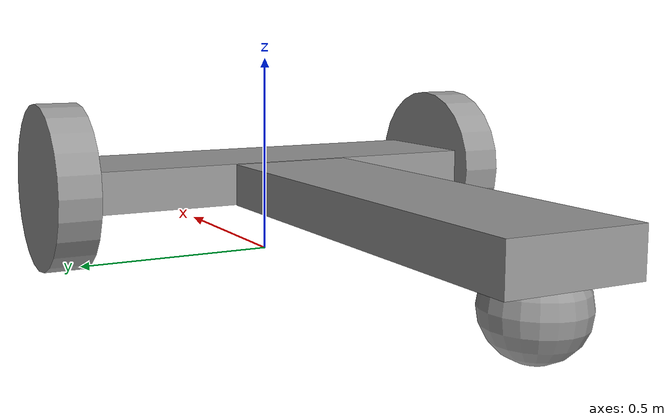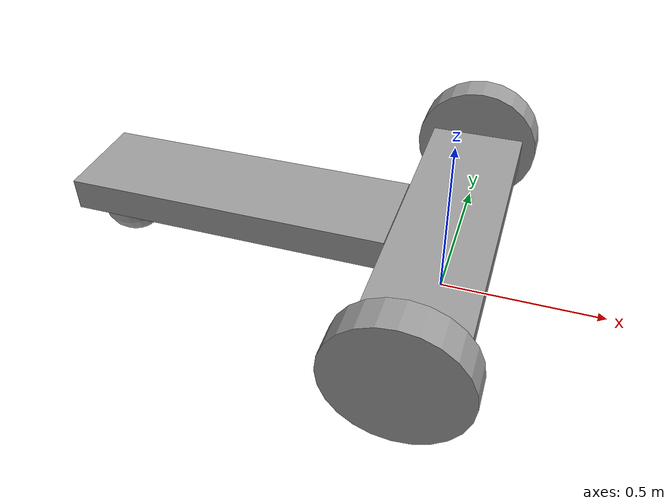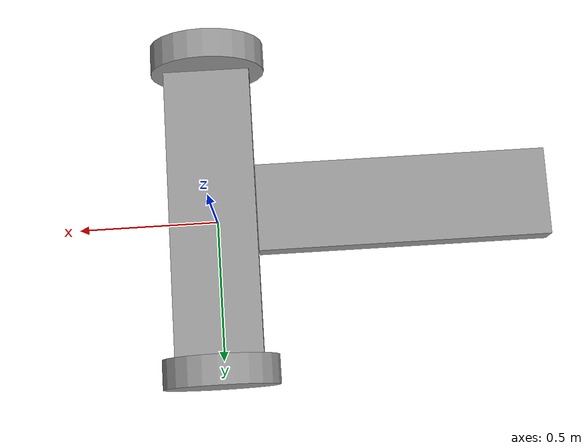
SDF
<?xml version='1.0'?>
<sdf version='1.6'>
  <model name='myRobot'>
    <link name='link_0'>
      <inertial>
        <mass>1</mass>
        <inertia>
          <ixx>0.166667</ixx>
          <ixy>0</ixy>
          <ixz>0</ixz>
          <iyy>0.166667</iyy>
          <iyz>0</iyz>
          <izz>0.166667</izz>
        </inertia>
        <pose frame=''>-0.01 0 0 0 -0 0</pose>
      </inertial>
      <pose frame=''>0.00249 0.000674 0.2 3.14159 0.001593 3.14159</pose>
      <gravity>1</gravity>
      <self_collide>0</self_collide>
      <kinematic>0</kinematic>
      <enable_wind>0</enable_wind>
      <visual name='visual'>
        <pose frame=''>0 0 0 0 -0 0</pose>
        <geometry>
          <box>
            <size>0.3 1 0.1</size>
          </box>
        </geometry>
        <material>
          <lighting>1</lighting>
          <script>
            <uri>file://media/materials/scripts/gazebo.material</uri>
            <name>Gazebo/Grey</name>
          </script>
          <shader type='pixel'>
            <normal_map>__default__</normal_map>
          </shader>
          <ambient>0.3 0.3 0.3 1</ambient>
          <diffuse>0.7 0.7 0.7 1</diffuse>
          <specular>0.01 0.01 0.01 1</specular>
          <emissive>0 0 0 1</emissive>
        </material>
        <transparency>0</transparency>
        <cast_shadows>1</cast_shadows>
      </visual>
      <collision name='collision'>
        <laser_retro>0</laser_retro>
        <max_contacts>10</max_contacts>
        <pose frame=''>0 0 0 0 -0 0</pose>
        <geometry>
          <box>
            <size>0.3 1 0.1</size>
          </box>
        </geometry>
        <surface>
          <friction>
            <ode>
              <mu>1</mu>
              <mu2>1</mu2>
              <fdir1>0 0 0</fdir1>
              <slip1>0</slip1>
              <slip2>0</slip2>
            </ode>
            <torsional>
              <coefficient>1</coefficient>
              <patch_radius>0</patch_radius>
              <surface_radius>0</surface_radius>
              <use_patch_radius>1</use_patch_radius>
              <ode>
                <slip>0</slip>
              </ode>
            </torsional>
          </friction>
          <bounce>
            <restitution_coefficient>0</restitution_coefficient>
            <threshold>1e+06</threshold>
          </bounce>
          <contact>
            <collide_without_contact>0</collide_without_contact>
            <collide_without_contact_bitmask>1</collide_without_contact_bitmask>
            <collide_bitmask>1</collide_bitmask>
            <ode>
              <soft_cfm>0</soft_cfm>
              <soft_erp>0.2</soft_erp>
              <kp>1e+13</kp>
              <kd>1</kd>
              <max_vel>0.01</max_vel>
              <min_depth>0</min_depth>
            </ode>
            <bullet>
              <split_impulse>1</split_impulse>
              <split_impulse_penetration_threshold>-0.01</split_impulse_penetration_threshold>
              <soft_cfm>0</soft_cfm>
              <soft_erp>0.2</soft_erp>
              <kp>1e+13</kp>
              <kd>1</kd>
            </bullet>
          </contact>
        </surface>
      </collision>
    </link>
    <link name='link_0_0'>
      <inertial>
        <mass>1</mass>
        <inertia>
          <ixx>0.1</ixx>
          <ixy>0</ixy>
          <ixz>0</ixz>
          <iyy>0.1</iyy>
          <iyz>0</iyz>
          <izz>0.1</izz>
        </inertia>
        <pose frame=''>0 0 0 0 -0 0</pose>
      </inertial>
      <pose frame=''>-1.04973 -1e-06 0.1 -3.14159 0.001372 3.14131</pose>
      <gravity>1</gravity>
      <self_collide>0</self_collide>
      <kinematic>0</kinematic>
      <enable_wind>0</enable_wind>
      <visual name='visual'>
        <pose frame=''>0 0 0 0 -0 0</pose>
        <geometry>
          <sphere>
            <radius>0.1</radius>
          </sphere>
        </geometry>
        <material>
          <lighting>1</lighting>
          <script>
            <uri>file://media/materials/scripts/gazebo.material</uri>
            <name>Gazebo/Grey</name>
          </script>
          <shader type='pixel'>
            <normal_map>__default__</normal_map>
          </shader>
          <ambient>0.3 0.3 0.3 1</ambient>
          <diffuse>0.7 0.7 0.7 1</diffuse>
          <specular>0.01 0.01 0.01 1</specular>
          <emissive>0 0 0 1</emissive>
        </material>
        <transparency>0</transparency>
        <cast_shadows>1</cast_shadows>
      </visual>
      <collision name='collision'>
        <laser_retro>0</laser_retro>
        <max_contacts>10</max_contacts>
        <pose frame=''>0 0 0 0 -0 0</pose>
        <geometry>
          <sphere>
            <radius>0.1</radius>
          </sphere>
        </geometry>
        <surface>
          <friction>
            <ode>
              <mu>1</mu>
              <mu2>1</mu2>
              <fdir1>0 0 0</fdir1>
              <slip1>0</slip1>
              <slip2>0</slip2>
            </ode>
            <torsional>
              <coefficient>1</coefficient>
              <patch_radius>0</patch_radius>
              <surface_radius>0</surface_radius>
              <use_patch_radius>1</use_patch_radius>
              <ode>
                <slip>0</slip>
              </ode>
            </torsional>
          </friction>
          <bounce>
            <restitution_coefficient>0</restitution_coefficient>
            <threshold>1e+06</threshold>
          </bounce>
          <contact>
            <collide_without_contact>0</collide_without_contact>
            <collide_without_contact_bitmask>1</collide_without_contact_bitmask>
            <collide_bitmask>1</collide_bitmask>
            <ode>
              <soft_cfm>0</soft_cfm>
              <soft_erp>0.2</soft_erp>
              <kp>1e+13</kp>
              <kd>1</kd>
              <max_vel>0.01</max_vel>
              <min_depth>0</min_depth>
            </ode>
            <bullet>
              <split_impulse>1</split_impulse>
              <split_impulse_penetration_threshold>-0.01</split_impulse_penetration_threshold>
              <soft_cfm>0</soft_cfm>
              <soft_erp>0.2</soft_erp>
              <kp>1e+13</kp>
              <kd>1</kd>
            </bullet>
          </contact>
        </surface>
      </collision>
    </link>
    <link name='link_0_clone_clone'>
      <inertial>
        <mass>1</mass>
        <inertia>
          <ixx>0.166667</ixx>
          <ixy>0</ixy>
          <ixz>0</ixz>
          <iyy>0.166667</iyy>
          <iyz>0</iyz>
          <izz>0.166667</izz>
        </inertia>
        <pose frame=''>-0.01 0 0 0 -0 0</pose>
      </inertial>
      <pose frame=''>-0.650318 0.000187 0.19965 -3.14022 -0 1.5707</pose>
      <gravity>1</gravity>
      <self_collide>0</self_collide>
      <kinematic>0</kinematic>
      <enable_wind>0</enable_wind>
      <visual name='visual'>
        <pose frame=''>0 0 0 0 -0 0</pose>
        <geometry>
          <box>
            <size>0.3 1 0.1</size>
          </box>
        </geometry>
        <material>
          <lighting>1</lighting>
          <script>
            <uri>file://media/materials/scripts/gazebo.material</uri>
            <name>Gazebo/Grey</name>
          </script>
          <shader type='pixel'>
            <normal_map>__default__</normal_map>
          </shader>
          <ambient>0.3 0.3 0.3 1</ambient>
          <diffuse>0.7 0.7 0.7 1</diffuse>
          <specular>0.01 0.01 0.01 1</specular>
          <emissive>0 0 0 1</emissive>
        </material>
        <transparency>0</transparency>
        <cast_shadows>1</cast_shadows>
      </visual>
      <collision name='collision'>
        <laser_retro>0</laser_retro>
        <max_contacts>10</max_contacts>
        <pose frame=''>0 0 0 0 -0 0</pose>
        <geometry>
          <box>
            <size>0.3 1 0.1</size>
          </box>
        </geometry>
        <surface>
          <friction>
            <ode>
              <mu>1</mu>
              <mu2>1</mu2>
              <fdir1>0 0 0</fdir1>
              <slip1>0</slip1>
              <slip2>0</slip2>
            </ode>
            <torsional>
              <coefficient>1</coefficient>
              <patch_radius>0</patch_radius>
              <surface_radius>0</surface_radius>
              <use_patch_radius>1</use_patch_radius>
              <ode>
                <slip>0</slip>
              </ode>
            </torsional>
          </friction>
          <bounce>
            <restitution_coefficient>0</restitution_coefficient>
            <threshold>1e+06</threshold>
          </bounce>
          <contact>
            <collide_without_contact>0</collide_without_contact>
            <collide_without_contact_bitmask>1</collide_without_contact_bitmask>
            <collide_bitmask>1</collide_bitmask>
            <ode>
              <soft_cfm>0</soft_cfm>
              <soft_erp>0.2</soft_erp>
              <kp>1e+13</kp>
              <kd>1</kd>
              <max_vel>0.01</max_vel>
              <min_depth>0</min_depth>
            </ode>
            <bullet>
              <split_impulse>1</split_impulse>
              <split_impulse_penetration_threshold>-0.01</split_impulse_penetration_threshold>
              <soft_cfm>0</soft_cfm>
              <soft_erp>0.2</soft_erp>
              <kp>1e+13</kp>
              <kd>1</kd>
            </bullet>
          </contact>
        </surface>
      </collision>
    </link>
    <link name='link_2'>
      <inertial>
        <mass>1</mass>
        <inertia>
          <ixx>0.145833</ixx>
          <ixy>0</ixy>
          <ixz>0</ixz>
          <iyy>0.145833</iyy>
          <iyz>0</iyz>
          <izz>0.125</izz>
        </inertia>
        <pose frame=''>0 0 0 0 -0 0</pose>
      </inertial>
      <pose frame=''>0 -0.550019 0.2 1.5707 -0 0</pose>
      <gravity>1</gravity>
      <self_collide>0</self_collide>
      <kinematic>0</kinematic>
      <enable_wind>0</enable_wind>
      <visual name='visual'>
        <pose frame=''>0 0 0 0 -0 0</pose>
        <geometry>
          <cylinder>
            <radius>0.2</radius>
            <length>0.1</length>
          </cylinder>
        </geometry>
        <material>
          <lighting>1</lighting>
          <script>
            <uri>file://media/materials/scripts/gazebo.material</uri>
            <name>Gazebo/Grey</name>
          </script>
          <shader type='pixel'>
            <normal_map>__default__</normal_map>
          </shader>
          <ambient>0.3 0.3 0.3 1</ambient>
          <diffuse>0.7 0.7 0.7 1</diffuse>
          <specular>0.01 0.01 0.01 1</specular>
          <emissive>0 0 0 1</emissive>
        </material>
        <transparency>0</transparency>
        <cast_shadows>1</cast_shadows>
      </visual>
      <collision name='collision'>
        <laser_retro>0</laser_retro>
        <max_contacts>10</max_contacts>
        <pose frame=''>0 0 0 0 -0 0</pose>
        <geometry>
          <cylinder>
            <radius>0.2</radius>
            <length>0.1</length>
          </cylinder>
        </geometry>
        <surface>
          <friction>
            <ode>
              <mu>1</mu>
              <mu2>1</mu2>
              <fdir1>0 0 0</fdir1>
              <slip1>0</slip1>
              <slip2>0</slip2>
            </ode>
            <torsional>
              <coefficient>1</coefficient>
              <patch_radius>0</patch_radius>
              <surface_radius>0</surface_radius>
              <use_patch_radius>1</use_patch_radius>
              <ode>
                <slip>0</slip>
              </ode>
            </torsional>
          </friction>
          <bounce>
            <restitution_coefficient>0</restitution_coefficient>
            <threshold>1e+06</threshold>
          </bounce>
          <contact>
            <collide_without_contact>0</collide_without_contact>
            <collide_without_contact_bitmask>1</collide_without_contact_bitmask>
            <collide_bitmask>1</collide_bitmask>
            <ode>
              <soft_cfm>0</soft_cfm>
              <soft_erp>0.2</soft_erp>
              <kp>1e+13</kp>
              <kd>1</kd>
              <max_vel>0.01</max_vel>
              <min_depth>0</min_depth>
            </ode>
            <bullet>
              <split_impulse>1</split_impulse>
              <split_impulse_penetration_threshold>-0.01</split_impulse_penetration_threshold>
              <soft_cfm>0</soft_cfm>
              <soft_erp>0.2</soft_erp>
              <kp>1e+13</kp>
              <kd>1</kd>
            </bullet>
          </contact>
        </surface>
      </collision>
    </link>
    <link name='link_2_clone'>
      <inertial>
        <mass>1</mass>
        <inertia>
          <ixx>0.145833</ixx>
          <ixy>0</ixy>
          <ixz>0</ixz>
          <iyy>0.145833</iyy>
          <iyz>0</iyz>
          <izz>0.125</izz>
        </inertia>
        <pose frame=''>0 0 0 0 -0 0</pose>
      </inertial>
      <pose frame=''>0 0.550019 0.2 1.5707 -0 0</pose>
      <gravity>1</gravity>
      <self_collide>0</self_collide>
      <kinematic>0</kinematic>
      <enable_wind>0</enable_wind>
      <visual name='visual'>
        <pose frame=''>0 0 0 0 -0 0</pose>
        <geometry>
          <cylinder>
            <radius>0.2</radius>
            <length>0.1</length>
          </cylinder>
        </geometry>
        <material>
          <lighting>1</lighting>
          <script>
            <uri>file://media/materials/scripts/gazebo.material</uri>
            <name>Gazebo/Grey</name>
          </script>
          <shader type='pixel'>
            <normal_map>__default__</normal_map>
          </shader>
          <ambient>0.3 0.3 0.3 1</ambient>
          <diffuse>0.7 0.7 0.7 1</diffuse>
          <specular>0.01 0.01 0.01 1</specular>
          <emissive>0 0 0 1</emissive>
        </material>
        <transparency>0</transparency>
        <cast_shadows>1</cast_shadows>
      </visual>
      <collision name='collision'>
        <laser_retro>0</laser_retro>
        <max_contacts>10</max_contacts>
        <pose frame=''>0 0 0 0 -0 0</pose>
        <geometry>
          <cylinder>
            <radius>0.2</radius>
            <length>0.1</length>
          </cylinder>
        </geometry>
        <surface>
          <friction>
            <ode>
              <mu>1</mu>
              <mu2>1</mu2>
              <fdir1>0 0 0</fdir1>
              <slip1>0</slip1>
              <slip2>0</slip2>
            </ode>
            <torsional>
              <coefficient>1</coefficient>
              <patch_radius>0</patch_radius>
              <surface_radius>0</surface_radius>
              <use_patch_radius>1</use_patch_radius>
              <ode>
                <slip>0</slip>
              </ode>
            </torsional>
          </friction>
          <bounce>
            <restitution_coefficient>0</restitution_coefficient>
            <threshold>1e+06</threshold>
          </bounce>
          <contact>
            <collide_without_contact>0</collide_without_contact>
            <collide_without_contact_bitmask>1</collide_without_contact_bitmask>
            <collide_bitmask>1</collide_bitmask>
            <ode>
              <soft_cfm>0</soft_cfm>
              <soft_erp>0.2</soft_erp>
              <kp>1e+13</kp>
              <kd>1</kd>
              <max_vel>0.01</max_vel>
              <min_depth>0</min_depth>
            </ode>
            <bullet>
              <split_impulse>1</split_impulse>
              <split_impulse_penetration_threshold>-0.01</split_impulse_penetration_threshold>
              <soft_cfm>0</soft_cfm>
              <soft_erp>0.2</soft_erp>
              <kp>1e+13</kp>
              <kd>1</kd>
            </bullet>
          </contact>
        </surface>
      </collision>
    </link>
    <joint name='link_0_JOINT_2' type='revolute'>
      <parent>link_0</parent>
      <child>link_2</child>
      <pose frame=''>0 0 0 0 -0 0</pose>
      <axis>
        <xyz>0 0 1</xyz>
        <use_parent_model_frame>0</use_parent_model_frame>
        <limit>
          <lower>-1.79769e+308</lower>
          <upper>1.79769e+308</upper>
          <effort>-1</effort>
          <velocity>-1</velocity>
        </limit>
        <dynamics>
          <spring_reference>0</spring_reference>
          <spring_stiffness>0</spring_stiffness>
          <damping>0</damping>
          <friction>0</friction>
        </dynamics>
      </axis>
      <physics>
        <ode>
          <limit>
            <cfm>0</cfm>
            <erp>0.2</erp>
          </limit>
          <suspension>
            <cfm>0</cfm>
            <erp>0.2</erp>
          </suspension>
        </ode>
      </physics>
    </joint>
    <joint name='link_0_JOINT_3_0' type='fixed'>
      <parent>link_0</parent>
      <child>link_0_clone_clone</child>
      <pose frame=''>0 0 0 0 -0 0</pose>
      <physics>
        <ode>
          <limit>
            <cfm>0</cfm>
            <erp>0.2</erp>
          </limit>
          <suspension>
            <cfm>0</cfm>
            <erp>0.2</erp>
          </suspension>
        </ode>
      </physics>
    </joint>
    <joint name='link_0_JOINT_3' type='revolute'>
      <parent>link_0</parent>
      <child>link_2_clone</child>
      <pose frame=''>0 0 0 0 -0 0</pose>
      <axis>
        <xyz>0 0 1</xyz>
        <use_parent_model_frame>0</use_parent_model_frame>
        <limit>
          <lower>-1.79769e+308</lower>
          <upper>1.79769e+308</upper>
          <effort>-1</effort>
          <velocity>-1</velocity>
        </limit>
        <dynamics>
          <spring_reference>0</spring_reference>
          <spring_stiffness>0</spring_stiffness>
          <damping>0</damping>
          <friction>0</friction>
        </dynamics>
      </axis>
      <physics>
        <ode>
          <limit>
            <cfm>0</cfm>
            <erp>0.2</erp>
          </limit>
          <suspension>
            <cfm>0</cfm>
            <erp>0.2</erp>
          </suspension>
        </ode>
      </physics>
    </joint>
    <joint name='link_0_clone_clone_JOINT_7' type='fixed'>
      <parent>link_0_clone_clone</parent>
      <child>link_0_0</child>
      <pose frame=''>0 0 0 0 -0 0</pose>
      <physics>
        <ode>
          <limit>
            <cfm>0</cfm>
            <erp>0.2</erp>
          </limit>
          <suspension>
            <cfm>0</cfm>
            <erp>0.2</erp>
          </suspension>
        </ode>
      </physics>
    </joint>
    <static>0</static>
    <allow_auto_disable>1</allow_auto_disable>
  </model>
</sdf>
